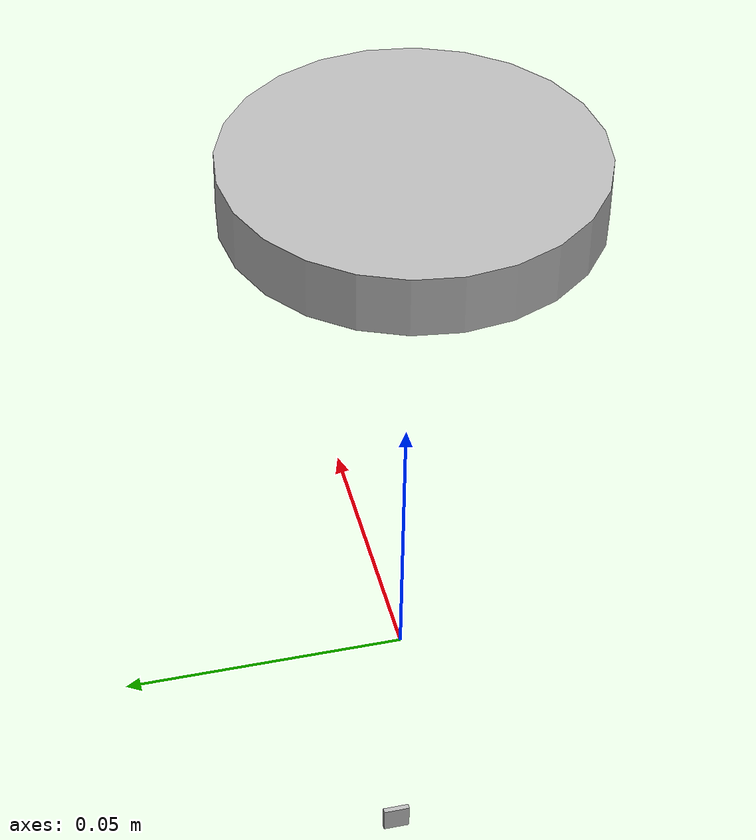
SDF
<?xml version='1.0'?>
<sdf version='1.4'>
	<model name="paparazzi_uav">
		<pose>0 0 .1 0 0 0</pose>

		<link name="chassis">
			<velocity_decay>
				<linear>0.001</linear>
			</velocity_decay>
			<inertial><!-- Converted to SI from Paparazzi's ARDrone model for JSBsim -->
				<mass>0.03</mass>
				<inertia>
					<ixx> 0.0000134 </ixx>
					<iyy> 0.0000658 </iyy>
					<izz> 0.0000695 </izz>
					<ixy> 0. </ixy>
					<ixz> 0. </ixz>
					<iyz> 0. </iyz>
				</inertia>
			</inertial>

			<collision name="collision">
				<geometry>
					<box>
						<size>0.3 0.3 0.05</size>
					</box>
				</geometry>
			</collision>

			<visual name="visual">
				<geometry>
					<box>
						<size>0.01 0.01 0.005</size>
					</box>
				</geometry>
			</visual>

			<sensor name="contactsensor" type="contact">
				<contact>
					<collision>collision</collision>
				</contact>
			</sensor>
		</link>

		<!-- MOTORS -->
		<link name="thrust">
			<pose>0 0 0 0 0 0</pose>
			<inertial>
				<mass>0.01</mass>
				<inertia>
					<ixx>0.000001</ixx>
					<iyy>0.000001</iyy>
					<izz>0.000001</izz>
					<ixy>0</ixy>
					<iyz>0</iyz>
					<ixz>0</ixz>
				</inertia>
			</inertial>
			<visual name="visual">
				<geometry>
					<cylinder>
						<radius>0.03</radius>
						<length>0.01</length>
					</cylinder>
				</geometry>
			</visual>
		</link>

		<joint type="fixed" name="thrust_joint">
			<parent>chassis</parent>
			<child>thrust</child>
		</joint>

		<link name="rudder">
			<pose>0 0 -0.15 0 0 0</pose>
			<inertial>
				<mass>0.001</mass>
				<inertia>
					<ixx>0.000001</ixx>
					<iyy>0.000001</iyy>
					<izz>0.000001</izz>
					<ixy>0</ixy>
					<iyz>0</iyz>
					<ixz>0</ixz>
				</inertia>
			</inertial>
			<visual name="visual">
				<geometry>
					<box>
						<size>0.001 0.005 0.005</size>
					</box>
				</geometry>
			</visual>
		</link>

		<joint type="fixed" name="rudder_joint">
			<parent>chassis</parent>
			<child>rudder</child>
		</joint>

    <!-- STEREOCAMERA -->
    <include>
      <uri>model://stereo_camera</uri>
      <pose>0 0 0 0 0 0</pose>
    </include>
		<joint name="stereo_camera_joint" type="fixed">
			<parent>chassis</parent>
			<child>stereo_camera::base</child>
		</joint>
	</model>
</sdf>

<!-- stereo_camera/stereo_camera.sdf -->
<sdf version='1.4'>
	<model name="stereo_camera">

		<link name="base">
			<inertial><!-- Taken from Paparazzi's ARDrone model for JSBsim -->
				<mass>0.001</mass>
				<inertia>
					<ixx> 0.005 </ixx>
					<iyy> 0.005 </iyy>
					<izz> 0.010 </izz>
					<ixy> 0. </ixy>
					<ixz> 0. </ixz>
					<iyz> 0. </iyz>
				</inertia>
			</inertial>

			<collision name="collision">
				<geometry>
					<box>
						<size>0.4 0.4 0.05</size>
					</box>
				</geometry>
			</collision>

		</link>

<!-- STEREO CAMERA -->
		<link name="stereo_camera">
			<pose>0.15 0 0 0 0 0</pose>
			<inertial>
				<mass>0.001</mass>
				<inertia>
					<ixx>.0001</ixx>
					<iyy>.0001</iyy>
					<izz>.0001</izz>
					<ixy>0</ixy>
					<iyz>0</iyz>
					<ixz>0</ixz>
				</inertia>
			</inertial>
     <sensor type="multicamera" name="stereo_camera">
      <update_rate>25.0</update_rate>
      <camera name="left">
        <pose>0 0.03 0 0 0 0</pose>
        <horizontal_fov>1.001819 </horizontal_fov>
        <image>
          <width>128</width>
          <height>96</height>
          <format>R8G8B8</format>
        </image>
        <clip>
          <near>0.02</near>
          <far>300</far>
        </clip>
        <noise>
          <type>gaussian</type>
          <mean>0.0</mean>
          <stddev>0.01</stddev>
        </noise>
      </camera>
      <camera name="right">
        <pose>0 -0.03 0 0 0 0</pose>
        <horizontal_fov>1.001819 </horizontal_fov>
        <image>
          <width>128</width>
          <height>96</height>
          <format>R8G8B8</format>
        </image>
        <clip>
          <near>0.02</near>
          <far>300</far>
        </clip>
        <noise>
          <type>gaussian</type>
          <mean>0.0</mean>
          <stddev>0.01</stddev>
        </noise>
      </camera>
			</sensor>
		</link>

		<joint name="stereo_camera_joint" type="fixed">
			<parent>base</parent>
			<child>stereo_camera</child>
		</joint>

	</model>
</sdf>
